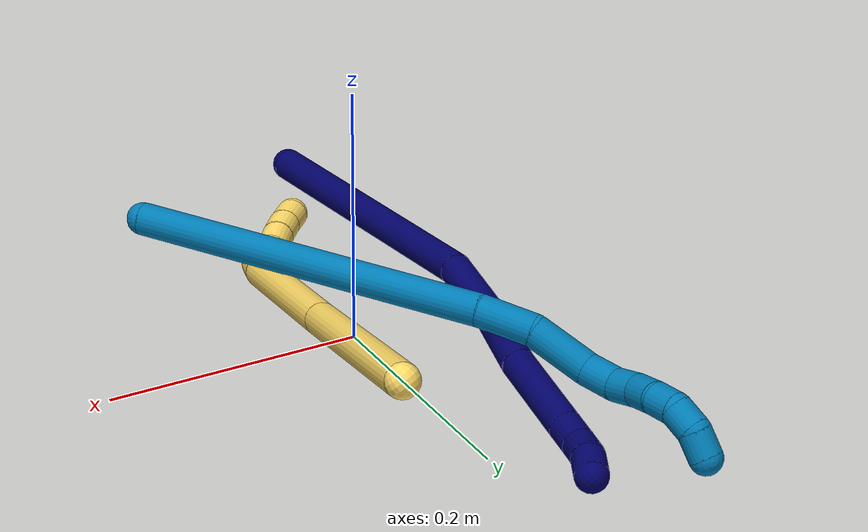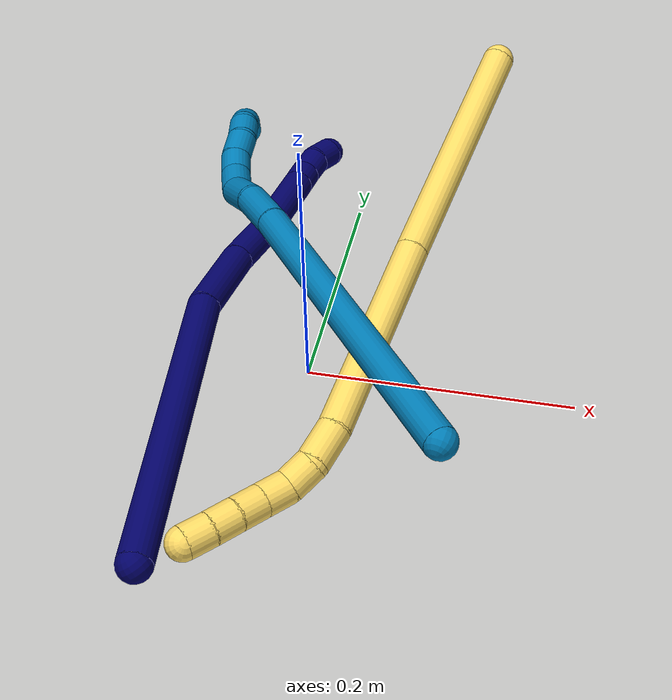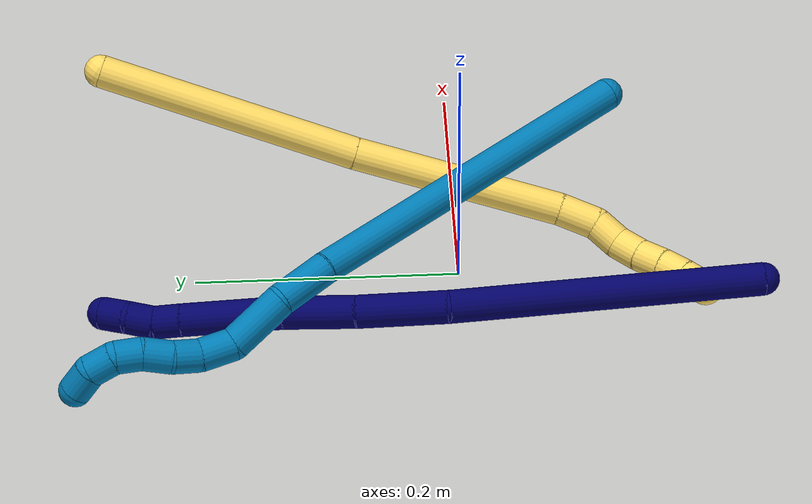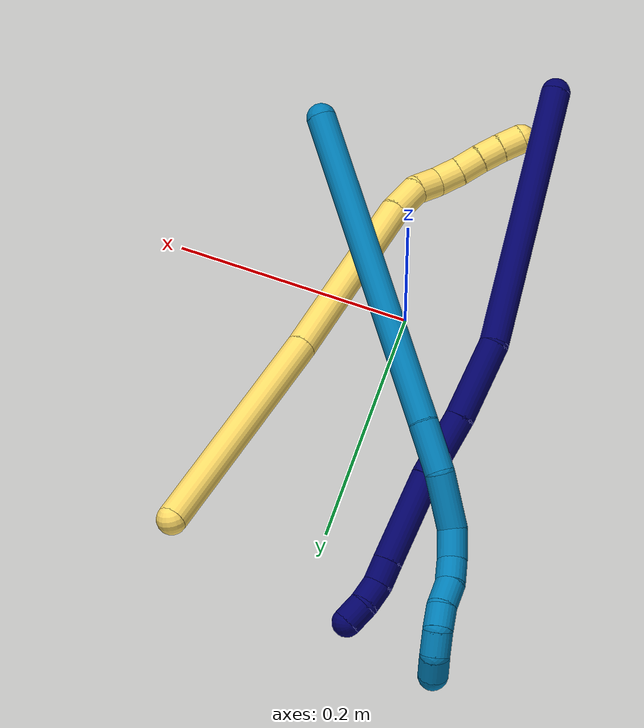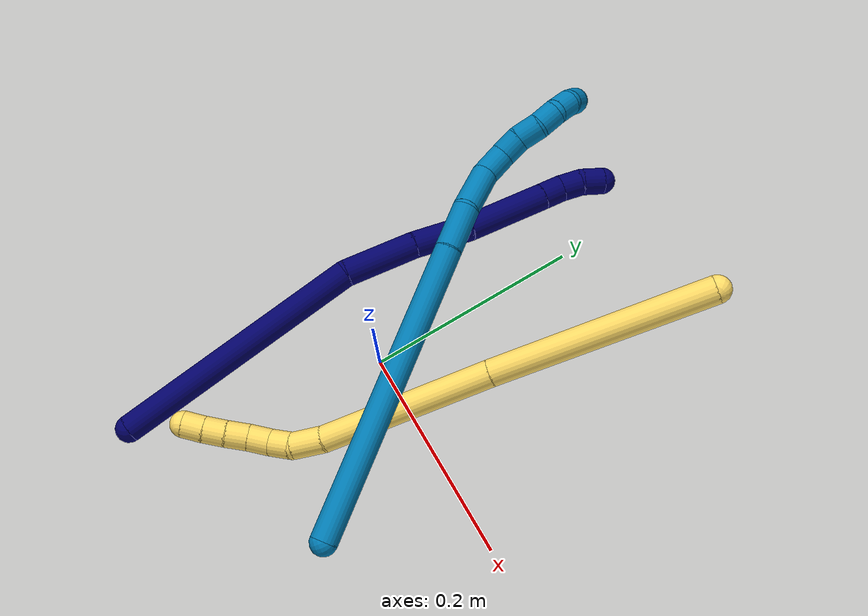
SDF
<sdf version="1.7">
 <world name="default">
  <model name="photoneo_s_sensor">
   <static>1</static>
   <pose>0 0 2 1.57079 1.57079 3.14159</pose>
   <link name="link">
    <inertial><mass>0.1</mass></inertial>
    <sensor name="sensor" type="depth">
     <update_rate>30</update_rate>
     <camera>
      <horizontal_fov>1.22</horizontal_fov>
      <image><width>1920</width><height>1200</height><format>B8G8R8</format></image>
      <clip><near>0.1</near><far>4</far></clip>
      <depth_camera><output>points</output></depth_camera>
     </camera>
     <plugin name="camera_plugin" filename="libgazebo_ros_depth_camera.so">
      <baseline>0.2</baseline>
      <alwaysOn>1</alwaysOn>
      <updateRate>0.0</updateRate>
      <cameraName>camera_ir</cameraName>
      <imageTopicName>/camera/color/image_raw</imageTopicName>
      <cameraInfoTopicName>/camera/color/camera_info</cameraInfoTopicName>
      <depthImageTopicName>/camera/depth/image_raw</depthImageTopicName>
      <depthImageCameraInfoTopicName>/camera/depth/camera_info</depthImageCameraInfoTopicName>
      <pointCloudTopicName>/camera/depth/points</pointCloudTopicName>
      <frameName>fr_optical</frameName>
      <pointCloudCutoff>0.1</pointCloudCutoff>
      <pointCloudCutoffMax>2.0</pointCloudCutoffMax>
      <distortionK1>0</distortionK1>
      <distortionK2>0</distortionK2>
      <distortionK3>0</distortionK3>
      <distortionT1>0</distortionT1>
      <distortionT2>0</distortionT2>
      <CxPrime>0</CxPrime>
      <Cx>0</Cx>
      <Cy>0</Cy>
      <focalLength>0</focalLength>
      <hackBaseline>0</hackBaseline>
     </plugin>
    </sensor>
   </link>
  </model>
  <model name="bin">
   <static>1</static>
   <link name="bottom">
    <collision name="collision-bottom">
     <pose>0 0 -0.01 0 -0 0</pose>
     <geometry><box><size>0.8 0.6 0.02</size></box></geometry>
     <surface>
      <friction><ode><mu>100</mu><mu2>100</mu2></ode></friction>
      <contact><collide_bitmask>65535</collide_bitmask></contact>
     </surface>
    </collision>
   </link>
   <link name="west_wall">
    <collision name="collision-west_wall">
     <pose>-0.41 0 0.1 0 -0 0</pose>
     <geometry><box><size>0.02 0.6 0.2</size></box></geometry>
     <surface>
      <friction><ode><mu>100</mu><mu2>100</mu2></ode></friction>
      <contact><collide_bitmask>65535</collide_bitmask></contact>
     </surface>
    </collision>
   </link>
   <link name="east_wall">
    <collision name="collision-east_wall">
     <pose>0.41 0 0.1 0 -0 0</pose>
     <geometry><box><size>0.02 0.6 0.2</size></box></geometry>
     <surface>
      <friction><ode><mu>100</mu><mu2>100</mu2></ode></friction>
      <contact><collide_bitmask>65535</collide_bitmask></contact>
     </surface>
    </collision>
   </link>
   <link name="south_wall">
    <collision name="collision-south_wall">
     <pose>0 -0.31 0.1 0 -0 0</pose>
     <geometry><box><size>0.8 0.02 0.2</size></box></geometry>
     <surface>
      <friction><ode><mu>100</mu><mu2>100</mu2></ode></friction>
      <contact><collide_bitmask>65535</collide_bitmask></contact>
     </surface>
    </collision>
   </link>
   <link name="north_wall">
    <collision name="collision-north_wall">
     <pose>0 0.31 0.1 0 -0 0</pose>
     <geometry><box><size>0.8 0.02 0.2</size></box></geometry>
     <surface>
      <friction><ode><mu>100</mu><mu2>100</mu2></ode></friction>
      <contact><collide_bitmask>65535</collide_bitmask></contact>
     </surface>
    </collision>
   </link>
  </model>
  <model name="5">
   <static>0</static>
   <link name="5">
    <collision name="collision-cylinder-e_1_1_4">
     <pose>-0.004913 -0.098305 0.023936 1.33195 -0.048525 -0.03813</pose>
     <geometry><cylinder><radius>0.0125</radius><length>0.202593</length></cylinder></geometry>
     <surface>
      <friction><ode><mu>1.16</mu><mu2>1.16</mu2><slip1>0</slip1><slip2>0</slip2></ode></friction>
      <contact><ode><kp>1e+06</kp><kd>1</kd><max_vel>0</max_vel><min_depth>0.001</min_depth></ode></contact>
     </surface>
    </collision>
    <visual name="visual-cylinder-e_1_1_4">
     <pose>-0.004913 -0.098305 0.023936 1.33195 -0.048525 -0.03813</pose>
     <geometry><cylinder><radius>0.0125</radius><length>0.202593</length></cylinder></geometry>
     <material><ambient>1 0.858824 0.4 1</ambient></material>
    </visual>
    <collision name="collision-cylinder-e_2_4_5">
     <pose>-0.013469 -0.274282 0.07075 1.28436 -0.044955 -0.033626</pose>
     <geometry><cylinder><radius>0.0125</radius><length>0.162104</length></cylinder></geometry>
     <surface>
      <friction><ode><mu>1.16</mu><mu2>1.16</mu2><slip1>0</slip1><slip2>0</slip2></ode></friction>
      <contact><ode><kp>1e+06</kp><kd>1</kd><max_vel>0</max_vel><min_depth>0.001</min_depth></ode></contact>
     </surface>
    </collision>
    <visual name="visual-cylinder-e_2_4_5">
     <pose>-0.013469 -0.274282 0.07075 1.28436 -0.044955 -0.033626</pose>
     <geometry><cylinder><radius>0.0125</radius><length>0.162104</length></cylinder></geometry>
     <material><ambient>1 0.858824 0.4 1</ambient></material>
    </visual>
    <collision name="collision-cylinder-e_3_5_6">
     <pose>-0.019743 -0.366531 0.09662 1.3683 -0.174964 -0.142813</pose>
     <geometry><cylinder><radius>0.0125</radius><length>0.030226</length></cylinder></geometry>
     <surface>
      <friction><ode><mu>1.16</mu><mu2>1.16</mu2><slip1>0</slip1><slip2>0</slip2></ode></friction>
      <contact><ode><kp>1e+06</kp><kd>1</kd><max_vel>0</max_vel><min_depth>0.001</min_depth></ode></contact>
     </surface>
    </collision>
    <visual name="visual-cylinder-e_3_5_6">
     <pose>-0.019743 -0.366531 0.09662 1.3683 -0.174964 -0.142813</pose>
     <geometry><cylinder><radius>0.0125</radius><length>0.030226</length></cylinder></geometry>
     <material><ambient>1 0.858824 0.4 1</ambient></material>
    </visual>
    <collision name="collision-cylinder-e_4_6_7">
     <pose>-0.026393 -0.391427 0.098333 1.69427 -0.368947 -0.416251</pose>
     <geometry><cylinder><radius>0.0125</radius><length>0.022294</length></cylinder></geometry>
     <surface>
      <friction><ode><mu>1.16</mu><mu2>1.16</mu2><slip1>0</slip1><slip2>0</slip2></ode></friction>
      <contact><ode><kp>1e+06</kp><kd>1</kd><max_vel>0</max_vel><min_depth>0.001</min_depth></ode></contact>
     </surface>
    </collision>
    <visual name="visual-cylinder-e_4_6_7">
     <pose>-0.026393 -0.391427 0.098333 1.69427 -0.368947 -0.416251</pose>
     <geometry><cylinder><radius>0.0125</radius><length>0.022294</length></cylinder></geometry>
     <material><ambient>1 0.858824 0.4 1</ambient></material>
    </visual>
    <collision name="collision-cylinder-e_5_7_8">
     <pose>-0.037004 -0.410267 0.098475 1.40533 -0.651584 -0.557299</pose>
     <geometry><cylinder><radius>0.0125</radius><length>0.021734</length></cylinder></geometry>
     <surface>
      <friction><ode><mu>1.16</mu><mu2>1.16</mu2><slip1>0</slip1><slip2>0</slip2></ode></friction>
      <contact><ode><kp>1e+06</kp><kd>1</kd><max_vel>0</max_vel><min_depth>0.001</min_depth></ode></contact>
     </surface>
    </collision>
    <visual name="visual-cylinder-e_5_7_8">
     <pose>-0.037004 -0.410267 0.098475 1.40533 -0.651584 -0.557299</pose>
     <geometry><cylinder><radius>0.0125</radius><length>0.021734</length></cylinder></geometry>
     <material><ambient>1 0.858824 0.4 1</ambient></material>
    </visual>
    <collision name="collision-cylinder-e_6_8_9">
     <pose>-0.049892 -0.426741 0.102387 1.26748 -0.647241 -0.483329</pose>
     <geometry><cylinder><radius>0.0125</radius><length>0.020889</length></cylinder></geometry>
     <surface>
      <friction><ode><mu>1.16</mu><mu2>1.16</mu2><slip1>0</slip1><slip2>0</slip2></ode></friction>
      <contact><ode><kp>1e+06</kp><kd>1</kd><max_vel>0</max_vel><min_depth>0.001</min_depth></ode></contact>
     </surface>
    </collision>
    <visual name="visual-cylinder-e_6_8_9">
     <pose>-0.049892 -0.426741 0.102387 1.26748 -0.647241 -0.483329</pose>
     <geometry><cylinder><radius>0.0125</radius><length>0.020889</length></cylinder></geometry>
     <material><ambient>1 0.858824 0.4 1</ambient></material>
    </visual>
    <collision name="collision-cylinder-e_7_9_10">
     <pose>-0.062243 -0.442512 0.106574 1.35696 -0.647695 -0.528538</pose>
     <geometry><cylinder><radius>0.0125</radius><length>0.020067</length></cylinder></geometry>
     <surface>
      <friction><ode><mu>1.16</mu><mu2>1.16</mu2><slip1>0</slip1><slip2>0</slip2></ode></friction>
      <contact><ode><kp>1e+06</kp><kd>1</kd><max_vel>0</max_vel><min_depth>0.001</min_depth></ode></contact>
     </surface>
    </collision>
    <visual name="visual-cylinder-e_7_9_10">
     <pose>-0.062243 -0.442512 0.106574 1.35696 -0.647695 -0.528538</pose>
     <geometry><cylinder><radius>0.0125</radius><length>0.020067</length></cylinder></geometry>
     <material><ambient>1 0.858824 0.4 1</ambient></material>
    </visual>
    <collision name="collision-cylinder-e_8_10_2">
     <pose>-0.074555 -0.45811 0.109398 1.42699 -0.672441 -0.587548</pose>
     <geometry><cylinder><radius>0.0125</radius><length>0.020093</length></cylinder></geometry>
     <surface>
      <friction><ode><mu>1.16</mu><mu2>1.16</mu2><slip1>0</slip1><slip2>0</slip2></ode></friction>
      <contact><ode><kp>1e+06</kp><kd>1</kd><max_vel>0</max_vel><min_depth>0.001</min_depth></ode></contact>
     </surface>
    </collision>
    <visual name="visual-cylinder-e_8_10_2">
     <pose>-0.074555 -0.45811 0.109398 1.42699 -0.672441 -0.587548</pose>
     <geometry><cylinder><radius>0.0125</radius><length>0.020093</length></cylinder></geometry>
     <material><ambient>1 0.858824 0.4 1</ambient></material>
    </visual>
    <collision name="collision-sphere-2">
     <pose>-0.080813 -0.465888 0.110525 0 -0 0</pose>
     <geometry><sphere><radius>0.0125</radius></sphere></geometry>
     <surface>
      <friction><ode><mu>1.16</mu><mu2>1.16</mu2><slip1>0</slip1><slip2>0</slip2></ode></friction>
      <contact><ode><kp>1e+06</kp><kd>1</kd><max_vel>0</max_vel><min_depth>0.001</min_depth></ode></contact>
     </surface>
    </collision>
    <visual name="visual-sphere-2">
     <pose>-0.080813 -0.465888 0.110525 0 -0 0</pose>
     <geometry><sphere><radius>0.0125</radius></sphere></geometry>
     <material><ambient>1 0.858824 0.4 1</ambient></material>
    </visual>
    <collision name="collision-sphere-10">
     <pose>-0.068297 -0.450332 0.108272 0 -0 0</pose>
     <geometry><sphere><radius>0.0125</radius></sphere></geometry>
     <surface>
      <friction><ode><mu>1.16</mu><mu2>1.16</mu2><slip1>0</slip1><slip2>0</slip2></ode></friction>
      <contact><ode><kp>1e+06</kp><kd>1</kd><max_vel>0</max_vel><min_depth>0.001</min_depth></ode></contact>
     </surface>
    </collision>
    <visual name="visual-sphere-10">
     <pose>-0.068297 -0.450332 0.108272 0 -0 0</pose>
     <geometry><sphere><radius>0.0125</radius></sphere></geometry>
     <material><ambient>1 0.858824 0.4 1</ambient></material>
    </visual>
    <collision name="collision-sphere-9">
     <pose>-0.05619 -0.434693 0.104876 0 -0 0</pose>
     <geometry><sphere><radius>0.0125</radius></sphere></geometry>
     <surface>
      <friction><ode><mu>1.16</mu><mu2>1.16</mu2><slip1>0</slip1><slip2>0</slip2></ode></friction>
      <contact><ode><kp>1e+06</kp><kd>1</kd><max_vel>0</max_vel><min_depth>0.001</min_depth></ode></contact>
     </surface>
    </collision>
    <visual name="visual-sphere-9">
     <pose>-0.05619 -0.434693 0.104876 0 -0 0</pose>
     <geometry><sphere><radius>0.0125</radius></sphere></geometry>
     <material><ambient>1 0.858824 0.4 1</ambient></material>
    </visual>
    <collision name="collision-sphere-4">
     <pose>-0.009827 -0.196611 0.047873 0 -0 0</pose>
     <geometry><sphere><radius>0.0125</radius></sphere></geometry>
     <surface>
      <friction><ode><mu>1.16</mu><mu2>1.16</mu2><slip1>0</slip1><slip2>0</slip2></ode></friction>
      <contact><ode><kp>1e+06</kp><kd>1</kd><max_vel>0</max_vel><min_depth>0.001</min_depth></ode></contact>
     </surface>
    </collision>
    <visual name="visual-sphere-4">
     <pose>-0.009827 -0.196611 0.047873 0 -0 0</pose>
     <geometry><sphere><radius>0.0125</radius></sphere></geometry>
     <material><ambient>1 0.858824 0.4 1</ambient></material>
    </visual>
    <collision name="collision-sphere-1">
     <geometry><sphere><radius>0.0125</radius></sphere></geometry>
     <surface>
      <friction><ode><mu>1.16</mu><mu2>1.16</mu2><slip1>0</slip1><slip2>0</slip2></ode></friction>
      <contact><ode><kp>1e+06</kp><kd>1</kd><max_vel>0</max_vel><min_depth>0.001</min_depth></ode></contact>
     </surface>
    </collision>
    <visual name="visual-sphere-1">
     <geometry><sphere><radius>0.0125</radius></sphere></geometry>
     <material><ambient>1 0.858824 0.4 1</ambient></material>
    </visual>
    <collision name="collision-sphere-8">
     <pose>-0.043594 -0.41879 0.099899 0 -0 0</pose>
     <geometry><sphere><radius>0.0125</radius></sphere></geometry>
     <surface>
      <friction><ode><mu>1.16</mu><mu2>1.16</mu2><slip1>0</slip1><slip2>0</slip2></ode></friction>
      <contact><ode><kp>1e+06</kp><kd>1</kd><max_vel>0</max_vel><min_depth>0.001</min_depth></ode></contact>
     </surface>
    </collision>
    <visual name="visual-sphere-8">
     <pose>-0.043594 -0.41879 0.099899 0 -0 0</pose>
     <geometry><sphere><radius>0.0125</radius></sphere></geometry>
     <material><ambient>1 0.858824 0.4 1</ambient></material>
    </visual>
    <collision name="collision-sphere-5">
     <pose>-0.017112 -0.351953 0.093627 0 -0 0</pose>
     <geometry><sphere><radius>0.0125</radius></sphere></geometry>
     <surface>
      <friction><ode><mu>1.16</mu><mu2>1.16</mu2><slip1>0</slip1><slip2>0</slip2></ode></friction>
      <contact><ode><kp>1e+06</kp><kd>1</kd><max_vel>0</max_vel><min_depth>0.001</min_depth></ode></contact>
     </surface>
    </collision>
    <visual name="visual-sphere-5">
     <pose>-0.017112 -0.351953 0.093627 0 -0 0</pose>
     <geometry><sphere><radius>0.0125</radius></sphere></geometry>
     <material><ambient>1 0.858824 0.4 1</ambient></material>
    </visual>
    <collision name="collision-sphere-6">
     <pose>-0.022373 -0.381109 0.099613 0 -0 0</pose>
     <geometry><sphere><radius>0.0125</radius></sphere></geometry>
     <surface>
      <friction><ode><mu>1.16</mu><mu2>1.16</mu2><slip1>0</slip1><slip2>0</slip2></ode></friction>
      <contact><ode><kp>1e+06</kp><kd>1</kd><max_vel>0</max_vel><min_depth>0.001</min_depth></ode></contact>
     </surface>
    </collision>
    <visual name="visual-sphere-6">
     <pose>-0.022373 -0.381109 0.099613 0 -0 0</pose>
     <geometry><sphere><radius>0.0125</radius></sphere></geometry>
     <material><ambient>1 0.858824 0.4 1</ambient></material>
    </visual>
    <collision name="collision-sphere-7">
     <pose>-0.030413 -0.401744 0.097052 0 -0 0</pose>
     <geometry><sphere><radius>0.0125</radius></sphere></geometry>
     <surface>
      <friction><ode><mu>1.16</mu><mu2>1.16</mu2><slip1>0</slip1><slip2>0</slip2></ode></friction>
      <contact><ode><kp>1e+06</kp><kd>1</kd><max_vel>0</max_vel><min_depth>0.001</min_depth></ode></contact>
     </surface>
    </collision>
    <visual name="visual-sphere-7">
     <pose>-0.030413 -0.401744 0.097052 0 -0 0</pose>
     <geometry><sphere><radius>0.0125</radius></sphere></geometry>
     <material><ambient>1 0.858824 0.4 1</ambient></material>
    </visual>
    <inertial>
     <pose>-0.017915 -0.240198 0.060093 0 -0 0</pose>
     <mass>0.5</mass>
     <inertia><ixx>0.001021</ixx><ixy>0</ixy><ixz>0</ixz><iyy>0.000194</iyy><iyz>0</iyz><izz>0.0011</izz></inertia>
    </inertial>
   </link>
   <pose>0.104087 0.265841 0.12516 0.588848 0.478416 0.008969</pose>
  </model>
  <model name="7">
   <static>0</static>
   <link name="7">
    <collision name="collision-cylinder-e_1_1_4">
     <pose>-0.02665 0.108612 0.039461 -1.2223 -0.226657 0.15915</pose>
     <geometry><cylinder><radius>0.0125</radius><length>0.237183</length></cylinder></geometry>
     <surface>
      <friction><ode><mu>1.16</mu><mu2>1.16</mu2><slip1>0</slip1><slip2>0</slip2></ode></friction>
      <contact><ode><kp>1e+06</kp><kd>1</kd><max_vel>0</max_vel><min_depth>0.001</min_depth></ode></contact>
     </surface>
    </collision>
    <visual name="visual-cylinder-e_1_1_4">
     <pose>-0.02665 0.108612 0.039461 -1.2223 -0.226657 0.15915</pose>
     <geometry><cylinder><radius>0.0125</radius><length>0.237183</length></cylinder></geometry>
     <material><ambient>0.003922 0 0.403922 1</ambient></material>
    </visual>
    <collision name="collision-cylinder-e_2_4_5">
     <pose>-0.05895 0.250822 0.082413 -1.46726 -0.165723 0.14946</pose>
     <geometry><cylinder><radius>0.0125</radius><length>0.068496</length></cylinder></geometry>
     <surface>
      <friction><ode><mu>1.16</mu><mu2>1.16</mu2><slip1>0</slip1><slip2>0</slip2></ode></friction>
      <contact><ode><kp>1e+06</kp><kd>1</kd><max_vel>0</max_vel><min_depth>0.001</min_depth></ode></contact>
     </surface>
    </collision>
    <visual name="visual-cylinder-e_2_4_5">
     <pose>-0.05895 0.250822 0.082413 -1.46726 -0.165723 0.14946</pose>
     <geometry><cylinder><radius>0.0125</radius><length>0.068496</length></cylinder></geometry>
     <material><ambient>0.003922 0 0.403922 1</ambient></material>
    </visual>
    <collision name="collision-cylinder-e_3_5_6">
     <pose>-0.067863 0.312126 0.086681 -1.54278 -0.117211 0.113979</pose>
     <geometry><cylinder><radius>0.0125</radius><length>0.055817</length></cylinder></geometry>
     <surface>
      <friction><ode><mu>1.16</mu><mu2>1.16</mu2><slip1>0</slip1><slip2>0</slip2></ode></friction>
      <contact><ode><kp>1e+06</kp><kd>1</kd><max_vel>0</max_vel><min_depth>0.001</min_depth></ode></contact>
     </surface>
    </collision>
    <visual name="visual-cylinder-e_3_5_6">
     <pose>-0.067863 0.312126 0.086681 -1.54278 -0.117211 0.113979</pose>
     <geometry><cylinder><radius>0.0125</radius><length>0.055817</length></cylinder></geometry>
     <material><ambient>0.003922 0 0.403922 1</ambient></material>
    </visual>
    <collision name="collision-cylinder-e_4_6_7">
     <pose>-0.078206 0.377548 0.091217 -1.47143 -0.184646 0.167239</pose>
     <geometry><cylinder><radius>0.0125</radius><length>0.077115</length></cylinder></geometry>
     <surface>
      <friction><ode><mu>1.16</mu><mu2>1.16</mu2><slip1>0</slip1><slip2>0</slip2></ode></friction>
      <contact><ode><kp>1e+06</kp><kd>1</kd><max_vel>0</max_vel><min_depth>0.001</min_depth></ode></contact>
     </surface>
    </collision>
    <visual name="visual-cylinder-e_4_6_7">
     <pose>-0.078206 0.377548 0.091217 -1.47143 -0.184646 0.167239</pose>
     <geometry><cylinder><radius>0.0125</radius><length>0.077115</length></cylinder></geometry>
     <material><ambient>0.003922 0 0.403922 1</ambient></material>
    </visual>
    <collision name="collision-cylinder-e_5_7_8">
     <pose>-0.087386 0.425519 0.095981 -1.47319 -0.201053 0.182437</pose>
     <geometry><cylinder><radius>0.0125</radius><length>0.021034</length></cylinder></geometry>
     <surface>
      <friction><ode><mu>1.16</mu><mu2>1.16</mu2><slip1>0</slip1><slip2>0</slip2></ode></friction>
      <contact><ode><kp>1e+06</kp><kd>1</kd><max_vel>0</max_vel><min_depth>0.001</min_depth></ode></contact>
     </surface>
    </collision>
    <visual name="visual-cylinder-e_5_7_8">
     <pose>-0.087386 0.425519 0.095981 -1.47319 -0.201053 0.182437</pose>
     <geometry><cylinder><radius>0.0125</radius><length>0.021034</length></cylinder></geometry>
     <material><ambient>0.003922 0 0.403922 1</ambient></material>
    </visual>
    <collision name="collision-cylinder-e_6_8_9">
     <pose>-0.08877 0.445679 0.098673 -1.40201 0.071124 -0.060036</pose>
     <geometry><cylinder><radius>0.0125</radius><length>0.020144</length></cylinder></geometry>
     <surface>
      <friction><ode><mu>1.16</mu><mu2>1.16</mu2><slip1>0</slip1><slip2>0</slip2></ode></friction>
      <contact><ode><kp>1e+06</kp><kd>1</kd><max_vel>0</max_vel><min_depth>0.001</min_depth></ode></contact>
     </surface>
    </collision>
    <visual name="visual-cylinder-e_6_8_9">
     <pose>-0.08877 0.445679 0.098673 -1.40201 0.071124 -0.060036</pose>
     <geometry><cylinder><radius>0.0125</radius><length>0.020144</length></cylinder></geometry>
     <material><ambient>0.003922 0 0.403922 1</ambient></material>
    </visual>
    <collision name="collision-cylinder-e_7_9_2">
     <pose>-0.087374 0.465582 0.09907 -1.69919 0.067374 -0.076623</pose>
     <geometry><cylinder><radius>0.0125</radius><length>0.02021</length></cylinder></geometry>
     <surface>
      <friction><ode><mu>1.16</mu><mu2>1.16</mu2><slip1>0</slip1><slip2>0</slip2></ode></friction>
      <contact><ode><kp>1e+06</kp><kd>1</kd><max_vel>0</max_vel><min_depth>0.001</min_depth></ode></contact>
     </surface>
    </collision>
    <visual name="visual-cylinder-e_7_9_2">
     <pose>-0.087374 0.465582 0.09907 -1.69919 0.067374 -0.076623</pose>
     <geometry><cylinder><radius>0.0125</radius><length>0.02021</length></cylinder></geometry>
     <material><ambient>0.003922 0 0.403922 1</ambient></material>
    </visual>
    <collision name="collision-sphere-2">
     <pose>-0.086694 0.475581 0.097779 0 -0 0</pose>
     <geometry><sphere><radius>0.0125</radius></sphere></geometry>
     <surface>
      <friction><ode><mu>1.16</mu><mu2>1.16</mu2><slip1>0</slip1><slip2>0</slip2></ode></friction>
      <contact><ode><kp>1e+06</kp><kd>1</kd><max_vel>0</max_vel><min_depth>0.001</min_depth></ode></contact>
     </surface>
    </collision>
    <visual name="visual-sphere-2">
     <pose>-0.086694 0.475581 0.097779 0 -0 0</pose>
     <geometry><sphere><radius>0.0125</radius></sphere></geometry>
     <material><ambient>0.003922 0 0.403922 1</ambient></material>
    </visual>
    <collision name="collision-sphere-9">
     <pose>-0.088054 0.455583 0.100361 0 -0 0</pose>
     <geometry><sphere><radius>0.0125</radius></sphere></geometry>
     <surface>
      <friction><ode><mu>1.16</mu><mu2>1.16</mu2><slip1>0</slip1><slip2>0</slip2></ode></friction>
      <contact><ode><kp>1e+06</kp><kd>1</kd><max_vel>0</max_vel><min_depth>0.001</min_depth></ode></contact>
     </surface>
    </collision>
    <visual name="visual-sphere-9">
     <pose>-0.088054 0.455583 0.100361 0 -0 0</pose>
     <geometry><sphere><radius>0.0125</radius></sphere></geometry>
     <material><ambient>0.003922 0 0.403922 1</ambient></material>
    </visual>
    <collision name="collision-sphere-4">
     <pose>-0.0533 0.217224 0.078922 0 -0 0</pose>
     <geometry><sphere><radius>0.0125</radius></sphere></geometry>
     <surface>
      <friction><ode><mu>1.16</mu><mu2>1.16</mu2><slip1>0</slip1><slip2>0</slip2></ode></friction>
      <contact><ode><kp>1e+06</kp><kd>1</kd><max_vel>0</max_vel><min_depth>0.001</min_depth></ode></contact>
     </surface>
    </collision>
    <visual name="visual-sphere-4">
     <pose>-0.0533 0.217224 0.078922 0 -0 0</pose>
     <geometry><sphere><radius>0.0125</radius></sphere></geometry>
     <material><ambient>0.003922 0 0.403922 1</ambient></material>
    </visual>
    <collision name="collision-sphere-1">
     <geometry><sphere><radius>0.0125</radius></sphere></geometry>
     <surface>
      <friction><ode><mu>1.16</mu><mu2>1.16</mu2><slip1>0</slip1><slip2>0</slip2></ode></friction>
      <contact><ode><kp>1e+06</kp><kd>1</kd><max_vel>0</max_vel><min_depth>0.001</min_depth></ode></contact>
     </surface>
    </collision>
    <visual name="visual-sphere-1">
     <geometry><sphere><radius>0.0125</radius></sphere></geometry>
     <material><ambient>0.003922 0 0.403922 1</ambient></material>
    </visual>
    <collision name="collision-sphere-8">
     <pose>-0.089486 0.435775 0.096985 0 -0 0</pose>
     <geometry><sphere><radius>0.0125</radius></sphere></geometry>
     <surface>
      <friction><ode><mu>1.16</mu><mu2>1.16</mu2><slip1>0</slip1><slip2>0</slip2></ode></friction>
      <contact><ode><kp>1e+06</kp><kd>1</kd><max_vel>0</max_vel><min_depth>0.001</min_depth></ode></contact>
     </surface>
    </collision>
    <visual name="visual-sphere-8">
     <pose>-0.089486 0.435775 0.096985 0 -0 0</pose>
     <geometry><sphere><radius>0.0125</radius></sphere></geometry>
     <material><ambient>0.003922 0 0.403922 1</ambient></material>
    </visual>
    <collision name="collision-sphere-5">
     <pose>-0.0646 0.28442 0.085904 0 -0 0</pose>
     <geometry><sphere><radius>0.0125</radius></sphere></geometry>
     <surface>
      <friction><ode><mu>1.16</mu><mu2>1.16</mu2><slip1>0</slip1><slip2>0</slip2></ode></friction>
      <contact><ode><kp>1e+06</kp><kd>1</kd><max_vel>0</max_vel><min_depth>0.001</min_depth></ode></contact>
     </surface>
    </collision>
    <visual name="visual-sphere-5">
     <pose>-0.0646 0.28442 0.085904 0 -0 0</pose>
     <geometry><sphere><radius>0.0125</radius></sphere></geometry>
     <material><ambient>0.003922 0 0.403922 1</ambient></material>
    </visual>
    <collision name="collision-sphere-6">
     <pose>-0.071127 0.339833 0.087457 0 -0 0</pose>
     <geometry><sphere><radius>0.0125</radius></sphere></geometry>
     <surface>
      <friction><ode><mu>1.16</mu><mu2>1.16</mu2><slip1>0</slip1><slip2>0</slip2></ode></friction>
      <contact><ode><kp>1e+06</kp><kd>1</kd><max_vel>0</max_vel><min_depth>0.001</min_depth></ode></contact>
     </surface>
    </collision>
    <visual name="visual-sphere-6">
     <pose>-0.071127 0.339833 0.087457 0 -0 0</pose>
     <geometry><sphere><radius>0.0125</radius></sphere></geometry>
     <material><ambient>0.003922 0 0.403922 1</ambient></material>
    </visual>
    <collision name="collision-sphere-7">
     <pose>-0.085285 0.415263 0.094977 0 -0 0</pose>
     <geometry><sphere><radius>0.0125</radius></sphere></geometry>
     <surface>
      <friction><ode><mu>1.16</mu><mu2>1.16</mu2><slip1>0</slip1><slip2>0</slip2></ode></friction>
      <contact><ode><kp>1e+06</kp><kd>1</kd><max_vel>0</max_vel><min_depth>0.001</min_depth></ode></contact>
     </surface>
    </collision>
    <visual name="visual-sphere-7">
     <pose>-0.085285 0.415263 0.094977 0 -0 0</pose>
     <geometry><sphere><radius>0.0125</radius></sphere></geometry>
     <material><ambient>0.003922 0 0.403922 1</ambient></material>
    </visual>
    <inertial>
     <pose>-0.051139 0.233631 0.065771 0 -0 0</pose>
     <mass>0.5</mass>
     <inertia>
      <ixx>0.001348</ixx>
      <ixy>0</ixy>
      <ixz>0</ixz>
      <iyy>0.000649</iyy>
      <iyz>0</iyz>
      <izz>-0.000843</izz>
     </inertia>
    </inertial>
   </link>
   <pose>-0.057164 -0.224079 0.038214 -0.126102 -0.692416 -0.215367</pose>
  </model>
  <model name="9">
   <static>0</static>
   <link name="9">
    <collision name="collision-cylinder-e_1_1_4">
     <pose>-0.084308 0.06957 0.086223 -0.678911 -0.650485 0.237044</pose>
     <geometry><cylinder><radius>0.0125</radius><length>0.27844</length></cylinder></geometry>
     <surface>
      <friction><ode><mu>1.16</mu><mu2>1.16</mu2><slip1>0</slip1><slip2>0</slip2></ode></friction>
      <contact><ode><kp>1e+06</kp><kd>1</kd><max_vel>0</max_vel><min_depth>0.001</min_depth></ode></contact>
     </surface>
    </collision>
    <visual name="visual-cylinder-e_1_1_4">
     <pose>-0.084308 0.06957 0.086223 -0.678911 -0.650485 0.237044</pose>
     <geometry><cylinder><radius>0.0125</radius><length>0.27844</length></cylinder></geometry>
     <material><ambient>0 0.490196 0.709804 1</ambient></material>
    </visual>
    <collision name="collision-cylinder-e_2_4_5">
     <pose>-0.180899 0.151791 0.184961 -0.790802 -0.604172 0.25868</pose>
     <geometry><cylinder><radius>0.0125</radius><length>0.043244</length></cylinder></geometry>
     <surface>
      <friction><ode><mu>1.16</mu><mu2>1.16</mu2><slip1>0</slip1><slip2>0</slip2></ode></friction>
      <contact><ode><kp>1e+06</kp><kd>1</kd><max_vel>0</max_vel><min_depth>0.001</min_depth></ode></contact>
     </surface>
    </collision>
    <visual name="visual-cylinder-e_2_4_5">
     <pose>-0.180899 0.151791 0.184961 -0.790802 -0.604172 0.25868</pose>
     <geometry><cylinder><radius>0.0125</radius><length>0.043244</length></cylinder></geometry>
     <material><ambient>0 0.490196 0.709804 1</ambient></material>
    </visual>
    <collision name="collision-cylinder-e_3_5_6">
     <pose>-0.202251 0.183069 0.208812 -1.02405 -0.394138 0.223491</pose>
     <geometry><cylinder><radius>0.0125</radius><length>0.047235</length></cylinder></geometry>
     <surface>
      <friction><ode><mu>1.16</mu><mu2>1.16</mu2><slip1>0</slip1><slip2>0</slip2></ode></friction>
      <contact><ode><kp>1e+06</kp><kd>1</kd><max_vel>0</max_vel><min_depth>0.001</min_depth></ode></contact>
     </surface>
    </collision>
    <visual name="visual-cylinder-e_3_5_6">
     <pose>-0.202251 0.183069 0.208812 -1.02405 -0.394138 0.223491</pose>
     <geometry><cylinder><radius>0.0125</radius><length>0.047235</length></cylinder></geometry>
     <material><ambient>0 0.490196 0.709804 1</ambient></material>
    </visual>
    <collision name="collision-cylinder-e_4_6_7">
     <pose>-0.215806 0.20828 0.23082 -0.552869 -0.343549 0.098355</pose>
     <geometry><cylinder><radius>0.0125</radius><length>0.026631</length></cylinder></geometry>
     <surface>
      <friction><ode><mu>1.16</mu><mu2>1.16</mu2><slip1>0</slip1><slip2>0</slip2></ode></friction>
      <contact><ode><kp>1e+06</kp><kd>1</kd><max_vel>0</max_vel><min_depth>0.001</min_depth></ode></contact>
     </surface>
    </collision>
    <visual name="visual-cylinder-e_4_6_7">
     <pose>-0.215806 0.20828 0.23082 -0.552869 -0.343549 0.098355</pose>
     <geometry><cylinder><radius>0.0125</radius><length>0.026631</length></cylinder></geometry>
     <material><ambient>0 0.490196 0.709804 1</ambient></material>
    </visual>
    <collision name="collision-cylinder-e_5_7_8">
     <pose>-0.224083 0.21723 0.25095 -0.245101 -0.370848 0.046199</pose>
     <geometry><cylinder><radius>0.0125</radius><length>0.020927</length></cylinder></geometry>
     <surface>
      <friction><ode><mu>1.16</mu><mu2>1.16</mu2><slip1>0</slip1><slip2>0</slip2></ode></friction>
      <contact><ode><kp>1e+06</kp><kd>1</kd><max_vel>0</max_vel><min_depth>0.001</min_depth></ode></contact>
     </surface>
    </collision>
    <visual name="visual-cylinder-e_5_7_8">
     <pose>-0.224083 0.21723 0.25095 -0.245101 -0.370848 0.046199</pose>
     <geometry><cylinder><radius>0.0125</radius><length>0.020927</length></cylinder></geometry>
     <material><ambient>0 0.490196 0.709804 1</ambient></material>
    </visual>
    <collision name="collision-cylinder-e_6_8_9">
     <pose>-0.229573 0.221239 0.271367 -0.148794 -0.152032 0.011353</pose>
     <geometry><cylinder><radius>0.0125</radius><length>0.022416</length></cylinder></geometry>
     <surface>
      <friction><ode><mu>1.16</mu><mu2>1.16</mu2><slip1>0</slip1><slip2>0</slip2></ode></friction>
      <contact><ode><kp>1e+06</kp><kd>1</kd><max_vel>0</max_vel><min_depth>0.001</min_depth></ode></contact>
     </surface>
    </collision>
    <visual name="visual-cylinder-e_6_8_9">
     <pose>-0.229573 0.221239 0.271367 -0.148794 -0.152032 0.011353</pose>
     <geometry><cylinder><radius>0.0125</radius><length>0.022416</length></cylinder></geometry>
     <material><ambient>0 0.490196 0.709804 1</ambient></material>
    </visual>
    <collision name="collision-cylinder-e_7_9_10">
     <pose>-0.233748 0.226633 0.291311 -0.395428 -0.249168 0.050165</pose>
     <geometry><cylinder><radius>0.0125</radius><length>0.020099</length></cylinder></geometry>
     <surface>
      <friction><ode><mu>1.16</mu><mu2>1.16</mu2><slip1>0</slip1><slip2>0</slip2></ode></friction>
      <contact><ode><kp>1e+06</kp><kd>1</kd><max_vel>0</max_vel><min_depth>0.001</min_depth></ode></contact>
     </surface>
    </collision>
    <visual name="visual-cylinder-e_7_9_10">
     <pose>-0.233748 0.226633 0.291311 -0.395428 -0.249168 0.050165</pose>
     <geometry><cylinder><radius>0.0125</radius><length>0.020099</length></cylinder></geometry>
     <material><ambient>0 0.490196 0.709804 1</ambient></material>
    </visual>
    <collision name="collision-cylinder-e_8_10_11">
     <pose>-0.237162 0.238127 0.306984 -0.858543 -0.09124 0.041787</pose>
     <geometry><cylinder><radius>0.0125</radius><length>0.020543</length></cylinder></geometry>
     <surface>
      <friction><ode><mu>1.16</mu><mu2>1.16</mu2><slip1>0</slip1><slip2>0</slip2></ode></friction>
      <contact><ode><kp>1e+06</kp><kd>1</kd><max_vel>0</max_vel><min_depth>0.001</min_depth></ode></contact>
     </surface>
    </collision>
    <visual name="visual-cylinder-e_8_10_11">
     <pose>-0.237162 0.238127 0.306984 -0.858543 -0.09124 0.041787</pose>
     <geometry><cylinder><radius>0.0125</radius><length>0.020543</length></cylinder></geometry>
     <material><ambient>0 0.490196 0.709804 1</ambient></material>
    </visual>
    <collision name="collision-cylinder-e_9_11_2">
     <pose>-0.237178 0.255675 0.316442 -1.29521 0.090051 -0.068137</pose>
     <geometry><cylinder><radius>0.0125</radius><length>0.020464</length></cylinder></geometry>
     <surface>
      <friction><ode><mu>1.16</mu><mu2>1.16</mu2><slip1>0</slip1><slip2>0</slip2></ode></friction>
      <contact><ode><kp>1e+06</kp><kd>1</kd><max_vel>0</max_vel><min_depth>0.001</min_depth></ode></contact>
     </surface>
    </collision>
    <visual name="visual-cylinder-e_9_11_2">
     <pose>-0.237178 0.255675 0.316442 -1.29521 0.090051 -0.068137</pose>
     <geometry><cylinder><radius>0.0125</radius><length>0.020464</length></cylinder></geometry>
     <material><ambient>0 0.490196 0.709804 1</ambient></material>
    </visual>
    <collision name="collision-sphere-2">
     <pose>-0.236258 0.265481 0.319215 0 -0 0</pose>
     <geometry><sphere><radius>0.0125</radius></sphere></geometry>
     <surface>
      <friction><ode><mu>1.16</mu><mu2>1.16</mu2><slip1>0</slip1><slip2>0</slip2></ode></friction>
      <contact><ode><kp>1e+06</kp><kd>1</kd><max_vel>0</max_vel><min_depth>0.001</min_depth></ode></contact>
     </surface>
    </collision>
    <visual name="visual-sphere-2">
     <pose>-0.236258 0.265481 0.319215 0 -0 0</pose>
     <geometry><sphere><radius>0.0125</radius></sphere></geometry>
     <material><ambient>0 0.490196 0.709804 1</ambient></material>
    </visual>
    <collision name="collision-sphere-11">
     <pose>-0.238098 0.245869 0.313669 0 -0 0</pose>
     <geometry><sphere><radius>0.0125</radius></sphere></geometry>
     <surface>
      <friction><ode><mu>1.16</mu><mu2>1.16</mu2><slip1>0</slip1><slip2>0</slip2></ode></friction>
      <contact><ode><kp>1e+06</kp><kd>1</kd><max_vel>0</max_vel><min_depth>0.001</min_depth></ode></contact>
     </surface>
    </collision>
    <visual name="visual-sphere-11">
     <pose>-0.238098 0.245869 0.313669 0 -0 0</pose>
     <geometry><sphere><radius>0.0125</radius></sphere></geometry>
     <material><ambient>0 0.490196 0.709804 1</ambient></material>
    </visual>
    <collision name="collision-sphere-10">
     <pose>-0.236226 0.230385 0.300299 0 -0 0</pose>
     <geometry><sphere><radius>0.0125</radius></sphere></geometry>
     <surface>
      <friction><ode><mu>1.16</mu><mu2>1.16</mu2><slip1>0</slip1><slip2>0</slip2></ode></friction>
      <contact><ode><kp>1e+06</kp><kd>1</kd><max_vel>0</max_vel><min_depth>0.001</min_depth></ode></contact>
     </surface>
    </collision>
    <visual name="visual-sphere-10">
     <pose>-0.236226 0.230385 0.300299 0 -0 0</pose>
     <geometry><sphere><radius>0.0125</radius></sphere></geometry>
     <material><ambient>0 0.490196 0.709804 1</ambient></material>
    </visual>
    <collision name="collision-sphere-9">
     <pose>-0.23127 0.222881 0.282324 0 -0 0</pose>
     <geometry><sphere><radius>0.0125</radius></sphere></geometry>
     <surface>
      <friction><ode><mu>1.16</mu><mu2>1.16</mu2><slip1>0</slip1><slip2>0</slip2></ode></friction>
      <contact><ode><kp>1e+06</kp><kd>1</kd><max_vel>0</max_vel><min_depth>0.001</min_depth></ode></contact>
     </surface>
    </collision>
    <visual name="visual-sphere-9">
     <pose>-0.23127 0.222881 0.282324 0 -0 0</pose>
     <geometry><sphere><radius>0.0125</radius></sphere></geometry>
     <material><ambient>0 0.490196 0.709804 1</ambient></material>
    </visual>
    <collision name="collision-sphere-4">
     <pose>-0.168616 0.13914 0.172446 0 -0 0</pose>
     <geometry><sphere><radius>0.0125</radius></sphere></geometry>
     <surface>
      <friction><ode><mu>1.16</mu><mu2>1.16</mu2><slip1>0</slip1><slip2>0</slip2></ode></friction>
      <contact><ode><kp>1e+06</kp><kd>1</kd><max_vel>0</max_vel><min_depth>0.001</min_depth></ode></contact>
     </surface>
    </collision>
    <visual name="visual-sphere-4">
     <pose>-0.168616 0.13914 0.172446 0 -0 0</pose>
     <geometry><sphere><radius>0.0125</radius></sphere></geometry>
     <material><ambient>0 0.490196 0.709804 1</ambient></material>
    </visual>
    <collision name="collision-sphere-1">
     <geometry><sphere><radius>0.0125</radius></sphere></geometry>
     <surface>
      <friction><ode><mu>1.16</mu><mu2>1.16</mu2><slip1>0</slip1><slip2>0</slip2></ode></friction>
      <contact><ode><kp>1e+06</kp><kd>1</kd><max_vel>0</max_vel><min_depth>0.001</min_depth></ode></contact>
     </surface>
    </collision>
    <visual name="visual-sphere-1">
     <geometry><sphere><radius>0.0125</radius></sphere></geometry>
     <material><ambient>0 0.490196 0.709804 1</ambient></material>
    </visual>
    <collision name="collision-sphere-8">
     <pose>-0.227875 0.219597 0.260411 0 -0 0</pose>
     <geometry><sphere><radius>0.0125</radius></sphere></geometry>
     <surface>
      <friction><ode><mu>1.16</mu><mu2>1.16</mu2><slip1>0</slip1><slip2>0</slip2></ode></friction>
      <contact><ode><kp>1e+06</kp><kd>1</kd><max_vel>0</max_vel><min_depth>0.001</min_depth></ode></contact>
     </surface>
    </collision>
    <visual name="visual-sphere-8">
     <pose>-0.227875 0.219597 0.260411 0 -0 0</pose>
     <geometry><sphere><radius>0.0125</radius></sphere></geometry>
     <material><ambient>0 0.490196 0.709804 1</ambient></material>
    </visual>
    <collision name="collision-sphere-5">
     <pose>-0.193182 0.164441 0.197475 0 -0 0</pose>
     <geometry><sphere><radius>0.0125</radius></sphere></geometry>
     <surface>
      <friction><ode><mu>1.16</mu><mu2>1.16</mu2><slip1>0</slip1><slip2>0</slip2></ode></friction>
      <contact><ode><kp>1e+06</kp><kd>1</kd><max_vel>0</max_vel><min_depth>0.001</min_depth></ode></contact>
     </surface>
    </collision>
    <visual name="visual-sphere-5">
     <pose>-0.193182 0.164441 0.197475 0 -0 0</pose>
     <geometry><sphere><radius>0.0125</radius></sphere></geometry>
     <material><ambient>0 0.490196 0.709804 1</ambient></material>
    </visual>
    <collision name="collision-sphere-6">
     <pose>-0.211321 0.201696 0.22015 0 -0 0</pose>
     <geometry><sphere><radius>0.0125</radius></sphere></geometry>
     <surface>
      <friction><ode><mu>1.16</mu><mu2>1.16</mu2><slip1>0</slip1><slip2>0</slip2></ode></friction>
      <contact><ode><kp>1e+06</kp><kd>1</kd><max_vel>0</max_vel><min_depth>0.001</min_depth></ode></contact>
     </surface>
    </collision>
    <visual name="visual-sphere-6">
     <pose>-0.211321 0.201696 0.22015 0 -0 0</pose>
     <geometry><sphere><radius>0.0125</radius></sphere></geometry>
     <material><ambient>0 0.490196 0.709804 1</ambient></material>
    </visual>
    <collision name="collision-sphere-7">
     <pose>-0.220291 0.214864 0.241489 0 -0 0</pose>
     <geometry><sphere><radius>0.0125</radius></sphere></geometry>
     <surface>
      <friction><ode><mu>1.16</mu><mu2>1.16</mu2><slip1>0</slip1><slip2>0</slip2></ode></friction>
      <contact><ode><kp>1e+06</kp><kd>1</kd><max_vel>0</max_vel><min_depth>0.001</min_depth></ode></contact>
     </surface>
    </collision>
    <visual name="visual-sphere-7">
     <pose>-0.220291 0.214864 0.241489 0 -0 0</pose>
     <geometry><sphere><radius>0.0125</radius></sphere></geometry>
     <material><ambient>0 0.490196 0.709804 1</ambient></material>
    </visual>
    <inertial>
     <pose>-0.141715 0.128627 0.155977 0 -0 0</pose>
     <mass>0.5</mass>
     <inertia>
      <ixx>0.00175</ixx>
      <ixy>0</ixy>
      <ixz>0</ixz>
      <iyy>0.001915</iyy>
      <iyz>0</iyz>
      <izz>0.000209</izz>
     </inertia>
    </inertial>
   </link>
   <pose>0.116848 -0.120882 0.074551 -1.24053 0.333247 -0.080377</pose>
  </model>
 </world>
</sdf>
